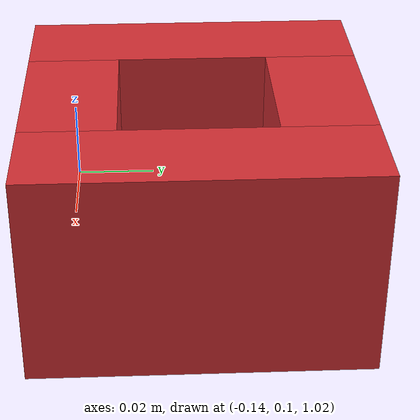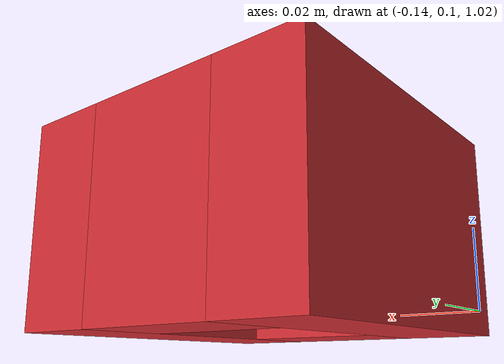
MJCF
<mujoco model="hanoi_disk_medium">
  <asset>
    <material name="hanoi_disk_medium_mat" rgba="0.82 0.18 0.20 1" specular="0.35" shininess="0.18"/>
    <material name="hanoi_disk_medium_collision_mat" rgba="0.55 0.55 0.55 1" specular="0.0" shininess="0.0" reflectance="0.0"/>
  </asset>

  <worldbody>
    <body name="hanoi_disk_medium" pos="-0.10 0.13 1.03950">
      <freejoint name="hanoi_disk_medium_joint"/>

      <!-- Parameters:
           inner_half = 0.01748
           outer_half = 0.03885
           pos = 0.028165
           thickness = 0.010685 -->

      <!-- Y-direction plates -->
      <geom name="hanoi_disk_medium_visual_pos_y" type="box" pos="0 0.028165 0" size="0.01748 0.010685 0.02475"
            material="hanoi_disk_medium_mat" contype="0" conaffinity="0" density="0" group="1"/>
      <geom name="hanoi_disk_medium_visual_neg_y" type="box" pos="0 -0.028165 0" size="0.01748 0.010685 0.02475"
            material="hanoi_disk_medium_mat" contype="0" conaffinity="0" density="0" group="1"/>

      <!-- X-direction plates -->
      <geom name="hanoi_disk_medium_visual_pos_x" type="box" pos="0.028165 0 0" size="0.010685 0.03885 0.02475"
            material="hanoi_disk_medium_mat" contype="0" conaffinity="0" density="0" group="1"/>
      <geom name="hanoi_disk_medium_visual_neg_x" type="box" pos="-0.028165 0 0" size="0.010685 0.03885 0.02475"
            material="hanoi_disk_medium_mat" contype="0" conaffinity="0" density="0" group="1"/>

      <!-- Collision geometry (identical to visual geometry) -->
      <geom name="hanoi_disk_medium_collision_pos_y" type="box" pos="0 0.028165 0" size="0.01748 0.010685 0.02475"
            material="hanoi_disk_medium_collision_mat" density="100" mass="0.025" friction="1.1 0.02 0.002" group="3"/>
      <geom name="hanoi_disk_medium_collision_neg_y" type="box" pos="0 -0.028165 0" size="0.01748 0.010685 0.02475"
            material="hanoi_disk_medium_collision_mat" density="100" mass="0.025" friction="1.1 0.02 0.002" group="3"/>
      <geom name="hanoi_disk_medium_collision_pos_x" type="box" pos="0.028165 0 0" size="0.010685 0.03885 0.02475"
            material="hanoi_disk_medium_collision_mat" density="100" mass="0.025" friction="1.1 0.02 0.002" group="3"/>
      <geom name="hanoi_disk_medium_collision_neg_x" type="box" pos="-0.028165 0 0" size="0.010685 0.03885 0.02475"
            material="hanoi_disk_medium_collision_mat" density="100" mass="0.025" friction="1.1 0.02 0.002" group="3"/>

      <!-- Reference sites -->
      <site name="hanoi_disk_medium_center_site" pos="0 0 0" size="0.004" rgba="0 0 0 0"/>
      <site name="hanoi_disk_medium_top_site" pos="0 0 0.02475" size="0.004" rgba="0 0 0 0"/>
      <site name="hanoi_disk_medium_bottom_site" pos="0 0 -0.02475" size="0.004" rgba="0 0 0 0"/>

    </body>
  </worldbody>
</mujoco>
